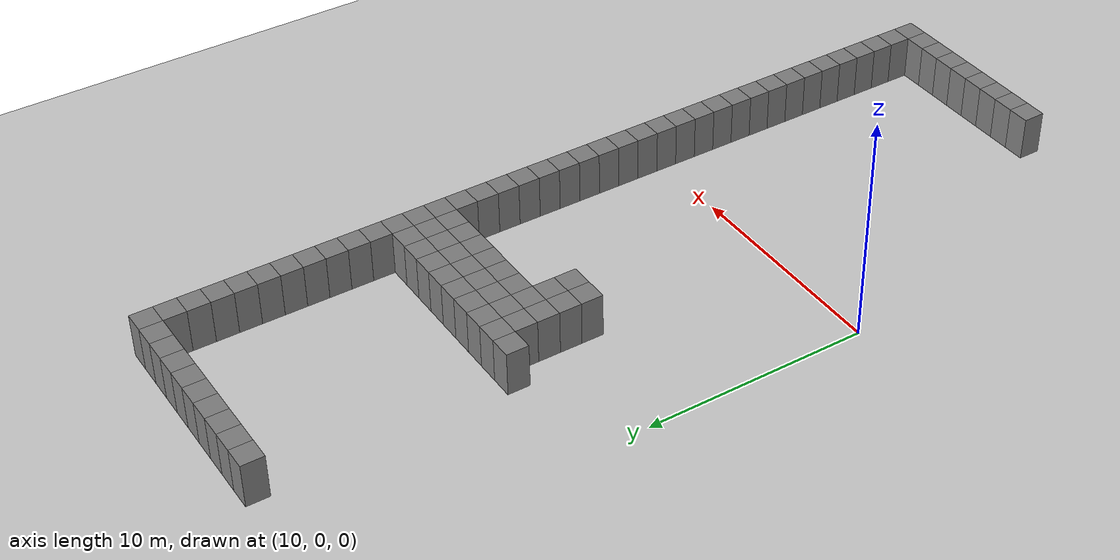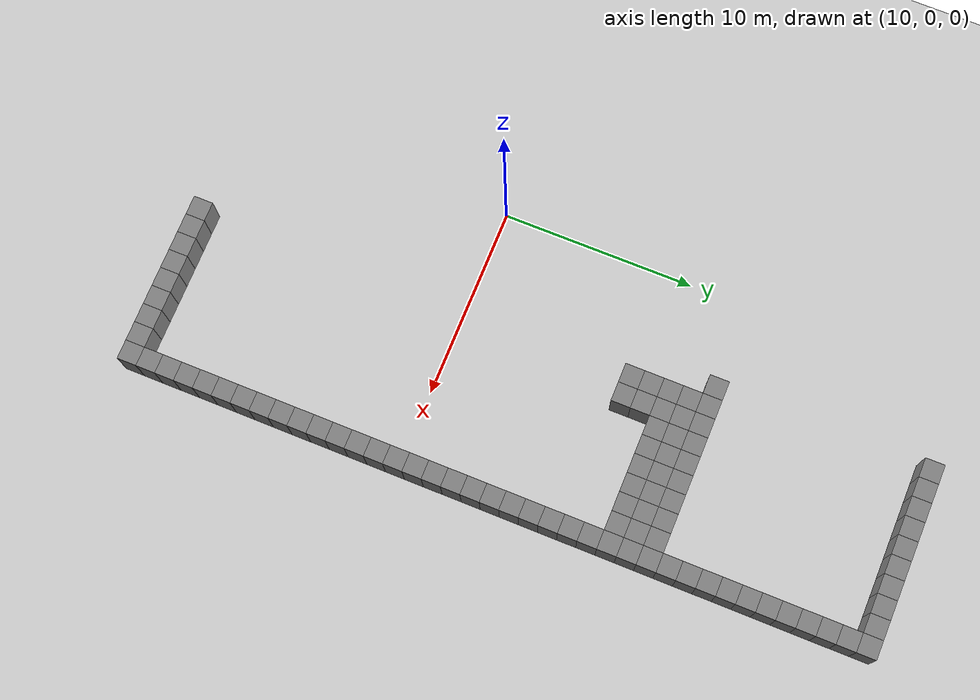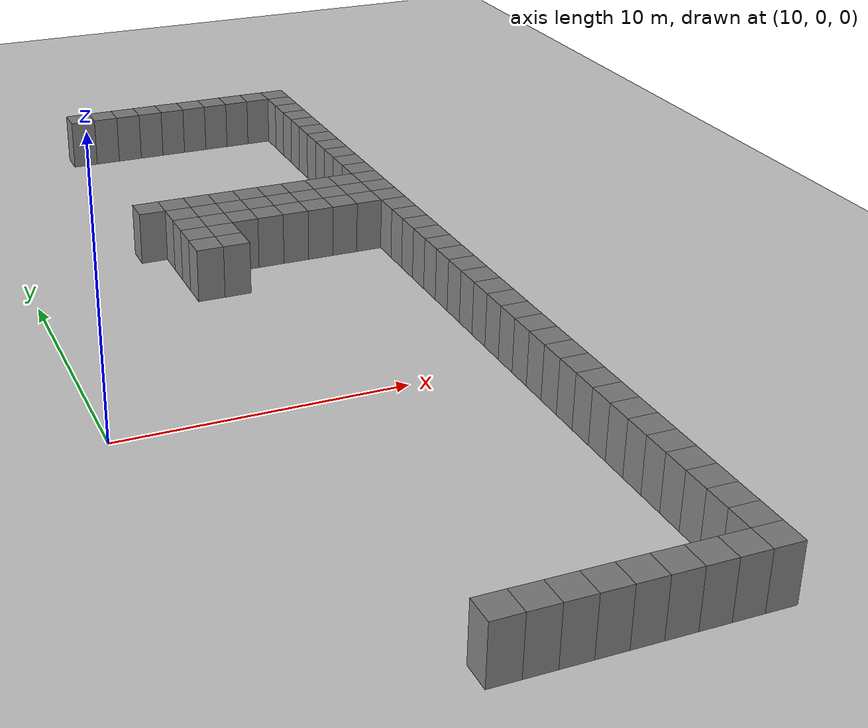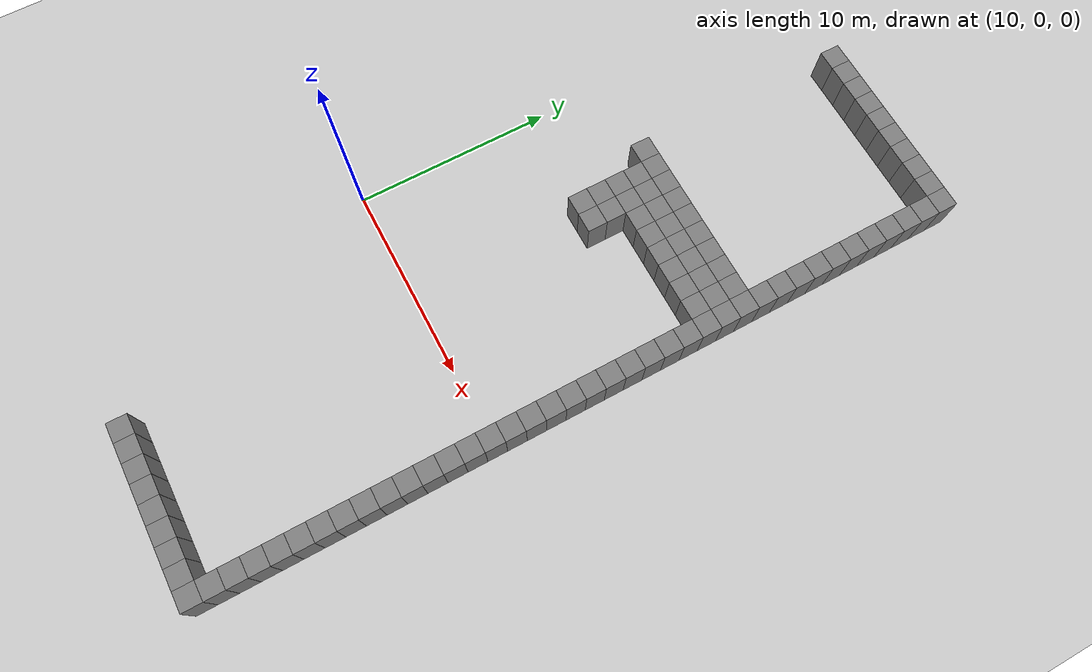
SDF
<sdf version="1.9">
 <world name="grid_world">
  <model name="ground_plane">
   <static>true</static>
   <link name="link">
    <collision name="collision">
     <geometry><plane><normal>0 0 1</normal><size>100 100</size></plane></geometry>
    </collision>
    <visual name="visual">
     <geometry><plane><normal>0 0 1</normal><size>100 100</size></plane></geometry>
     <material>
      <ambient>0.8 0.8 0.8 1</ambient>
      <diffuse>0.8 0.8 0.8 1</diffuse>
      <specular>0.8 0.8 0.8 1</specular>
     </material>
    </visual>
   </link>
  </model>
  <model name="wall_11_41">
   <static>true</static>
   <pose>16 -14 1 0 0 0</pose>
   <link name="link">
    <collision name="collision"><geometry><box><size>1 1 2</size></box></geometry></collision>
    <visual name="visual">
     <geometry><box><size>1 1 2</size></box></geometry>
     <material>
      <ambient>0.5 0.5 0.5 1</ambient>
      <diffuse>0.5 0.5 0.5 1</diffuse>
      <specular>0.5 0.5 0.5 1</specular>
     </material>
    </visual>
   </link>
  </model>
  <model name="wall_11_42">
   <static>true</static>
   <pose>17 -14 1 0 0 0</pose>
   <link name="link">
    <collision name="collision"><geometry><box><size>1 1 2</size></box></geometry></collision>
    <visual name="visual">
     <geometry><box><size>1 1 2</size></box></geometry>
     <material>
      <ambient>0.5 0.5 0.5 1</ambient>
      <diffuse>0.5 0.5 0.5 1</diffuse>
      <specular>0.5 0.5 0.5 1</specular>
     </material>
    </visual>
   </link>
  </model>
  <model name="wall_11_43">
   <static>true</static>
   <pose>18 -14 1 0 0 0</pose>
   <link name="link">
    <collision name="collision"><geometry><box><size>1 1 2</size></box></geometry></collision>
    <visual name="visual">
     <geometry><box><size>1 1 2</size></box></geometry>
     <material>
      <ambient>0.5 0.5 0.5 1</ambient>
      <diffuse>0.5 0.5 0.5 1</diffuse>
      <specular>0.5 0.5 0.5 1</specular>
     </material>
    </visual>
   </link>
  </model>
  <model name="wall_11_44">
   <static>true</static>
   <pose>19 -14 1 0 0 0</pose>
   <link name="link">
    <collision name="collision"><geometry><box><size>1 1 2</size></box></geometry></collision>
    <visual name="visual">
     <geometry><box><size>1 1 2</size></box></geometry>
     <material>
      <ambient>0.5 0.5 0.5 1</ambient>
      <diffuse>0.5 0.5 0.5 1</diffuse>
      <specular>0.5 0.5 0.5 1</specular>
     </material>
    </visual>
   </link>
  </model>
  <model name="wall_11_45">
   <static>true</static>
   <pose>20 -14 1 0 0 0</pose>
   <link name="link">
    <collision name="collision"><geometry><box><size>1 1 2</size></box></geometry></collision>
    <visual name="visual">
     <geometry><box><size>1 1 2</size></box></geometry>
     <material>
      <ambient>0.5 0.5 0.5 1</ambient>
      <diffuse>0.5 0.5 0.5 1</diffuse>
      <specular>0.5 0.5 0.5 1</specular>
     </material>
    </visual>
   </link>
  </model>
  <model name="wall_11_46">
   <static>true</static>
   <pose>21 -14 1 0 0 0</pose>
   <link name="link">
    <collision name="collision"><geometry><box><size>1 1 2</size></box></geometry></collision>
    <visual name="visual">
     <geometry><box><size>1 1 2</size></box></geometry>
     <material>
      <ambient>0.5 0.5 0.5 1</ambient>
      <diffuse>0.5 0.5 0.5 1</diffuse>
      <specular>0.5 0.5 0.5 1</specular>
     </material>
    </visual>
   </link>
  </model>
  <model name="wall_11_47">
   <static>true</static>
   <pose>22 -14 1 0 0 0</pose>
   <link name="link">
    <collision name="collision"><geometry><box><size>1 1 2</size></box></geometry></collision>
    <visual name="visual">
     <geometry><box><size>1 1 2</size></box></geometry>
     <material>
      <ambient>0.5 0.5 0.5 1</ambient>
      <diffuse>0.5 0.5 0.5 1</diffuse>
      <specular>0.5 0.5 0.5 1</specular>
     </material>
    </visual>
   </link>
  </model>
  <model name="wall_11_48">
   <static>true</static>
   <pose>23 -14 1 0 0 0</pose>
   <link name="link">
    <collision name="collision"><geometry><box><size>1 1 2</size></box></geometry></collision>
    <visual name="visual">
     <geometry><box><size>1 1 2</size></box></geometry>
     <material>
      <ambient>0.5 0.5 0.5 1</ambient>
      <diffuse>0.5 0.5 0.5 1</diffuse>
      <specular>0.5 0.5 0.5 1</specular>
     </material>
    </visual>
   </link>
  </model>
  <model name="wall_11_49">
   <static>true</static>
   <pose>24 -14 1 0 0 0</pose>
   <link name="link">
    <collision name="collision"><geometry><box><size>1 1 2</size></box></geometry></collision>
    <visual name="visual">
     <geometry><box><size>1 1 2</size></box></geometry>
     <material>
      <ambient>0.5 0.5 0.5 1</ambient>
      <diffuse>0.5 0.5 0.5 1</diffuse>
      <specular>0.5 0.5 0.5 1</specular>
     </material>
    </visual>
   </link>
  </model>
  <model name="wall_12_49">
   <static>true</static>
   <pose>24 -13 1 0 0 0</pose>
   <link name="link">
    <collision name="collision"><geometry><box><size>1 1 2</size></box></geometry></collision>
    <visual name="visual">
     <geometry><box><size>1 1 2</size></box></geometry>
     <material>
      <ambient>0.5 0.5 0.5 1</ambient>
      <diffuse>0.5 0.5 0.5 1</diffuse>
      <specular>0.5 0.5 0.5 1</specular>
     </material>
    </visual>
   </link>
  </model>
  <model name="wall_13_49">
   <static>true</static>
   <pose>24 -12 1 0 0 0</pose>
   <link name="link">
    <collision name="collision"><geometry><box><size>1 1 2</size></box></geometry></collision>
    <visual name="visual">
     <geometry><box><size>1 1 2</size></box></geometry>
     <material>
      <ambient>0.5 0.5 0.5 1</ambient>
      <diffuse>0.5 0.5 0.5 1</diffuse>
      <specular>0.5 0.5 0.5 1</specular>
     </material>
    </visual>
   </link>
  </model>
  <model name="wall_14_49">
   <static>true</static>
   <pose>24 -11 1 0 0 0</pose>
   <link name="link">
    <collision name="collision"><geometry><box><size>1 1 2</size></box></geometry></collision>
    <visual name="visual">
     <geometry><box><size>1 1 2</size></box></geometry>
     <material>
      <ambient>0.5 0.5 0.5 1</ambient>
      <diffuse>0.5 0.5 0.5 1</diffuse>
      <specular>0.5 0.5 0.5 1</specular>
     </material>
    </visual>
   </link>
  </model>
  <model name="wall_15_49">
   <static>true</static>
   <pose>24 -10 1 0 0 0</pose>
   <link name="link">
    <collision name="collision"><geometry><box><size>1 1 2</size></box></geometry></collision>
    <visual name="visual">
     <geometry><box><size>1 1 2</size></box></geometry>
     <material>
      <ambient>0.5 0.5 0.5 1</ambient>
      <diffuse>0.5 0.5 0.5 1</diffuse>
      <specular>0.5 0.5 0.5 1</specular>
     </material>
    </visual>
   </link>
  </model>
  <model name="wall_16_49">
   <static>true</static>
   <pose>24 -9 1 0 0 0</pose>
   <link name="link">
    <collision name="collision"><geometry><box><size>1 1 2</size></box></geometry></collision>
    <visual name="visual">
     <geometry><box><size>1 1 2</size></box></geometry>
     <material>
      <ambient>0.5 0.5 0.5 1</ambient>
      <diffuse>0.5 0.5 0.5 1</diffuse>
      <specular>0.5 0.5 0.5 1</specular>
     </material>
    </visual>
   </link>
  </model>
  <model name="wall_17_49">
   <static>true</static>
   <pose>24 -8 1 0 0 0</pose>
   <link name="link">
    <collision name="collision"><geometry><box><size>1 1 2</size></box></geometry></collision>
    <visual name="visual">
     <geometry><box><size>1 1 2</size></box></geometry>
     <material>
      <ambient>0.5 0.5 0.5 1</ambient>
      <diffuse>0.5 0.5 0.5 1</diffuse>
      <specular>0.5 0.5 0.5 1</specular>
     </material>
    </visual>
   </link>
  </model>
  <model name="wall_18_49">
   <static>true</static>
   <pose>24 -7 1 0 0 0</pose>
   <link name="link">
    <collision name="collision"><geometry><box><size>1 1 2</size></box></geometry></collision>
    <visual name="visual">
     <geometry><box><size>1 1 2</size></box></geometry>
     <material>
      <ambient>0.5 0.5 0.5 1</ambient>
      <diffuse>0.5 0.5 0.5 1</diffuse>
      <specular>0.5 0.5 0.5 1</specular>
     </material>
    </visual>
   </link>
  </model>
  <model name="wall_19_49">
   <static>true</static>
   <pose>24 -6 1 0 0 0</pose>
   <link name="link">
    <collision name="collision"><geometry><box><size>1 1 2</size></box></geometry></collision>
    <visual name="visual">
     <geometry><box><size>1 1 2</size></box></geometry>
     <material>
      <ambient>0.5 0.5 0.5 1</ambient>
      <diffuse>0.5 0.5 0.5 1</diffuse>
      <specular>0.5 0.5 0.5 1</specular>
     </material>
    </visual>
   </link>
  </model>
  <model name="wall_20_49">
   <static>true</static>
   <pose>24 -5 1 0 0 0</pose>
   <link name="link">
    <collision name="collision"><geometry><box><size>1 1 2</size></box></geometry></collision>
    <visual name="visual">
     <geometry><box><size>1 1 2</size></box></geometry>
     <material>
      <ambient>0.5 0.5 0.5 1</ambient>
      <diffuse>0.5 0.5 0.5 1</diffuse>
      <specular>0.5 0.5 0.5 1</specular>
     </material>
    </visual>
   </link>
  </model>
  <model name="wall_21_49">
   <static>true</static>
   <pose>24 -4 1 0 0 0</pose>
   <link name="link">
    <collision name="collision"><geometry><box><size>1 1 2</size></box></geometry></collision>
    <visual name="visual">
     <geometry><box><size>1 1 2</size></box></geometry>
     <material>
      <ambient>0.5 0.5 0.5 1</ambient>
      <diffuse>0.5 0.5 0.5 1</diffuse>
      <specular>0.5 0.5 0.5 1</specular>
     </material>
    </visual>
   </link>
  </model>
  <model name="wall_22_49">
   <static>true</static>
   <pose>24 -3 1 0 0 0</pose>
   <link name="link">
    <collision name="collision"><geometry><box><size>1 1 2</size></box></geometry></collision>
    <visual name="visual">
     <geometry><box><size>1 1 2</size></box></geometry>
     <material>
      <ambient>0.5 0.5 0.5 1</ambient>
      <diffuse>0.5 0.5 0.5 1</diffuse>
      <specular>0.5 0.5 0.5 1</specular>
     </material>
    </visual>
   </link>
  </model>
  <model name="wall_23_49">
   <static>true</static>
   <pose>24 -2 1 0 0 0</pose>
   <link name="link">
    <collision name="collision"><geometry><box><size>1 1 2</size></box></geometry></collision>
    <visual name="visual">
     <geometry><box><size>1 1 2</size></box></geometry>
     <material>
      <ambient>0.5 0.5 0.5 1</ambient>
      <diffuse>0.5 0.5 0.5 1</diffuse>
      <specular>0.5 0.5 0.5 1</specular>
     </material>
    </visual>
   </link>
  </model>
  <model name="wall_24_49">
   <static>true</static>
   <pose>24 -1 1 0 0 0</pose>
   <link name="link">
    <collision name="collision"><geometry><box><size>1 1 2</size></box></geometry></collision>
    <visual name="visual">
     <geometry><box><size>1 1 2</size></box></geometry>
     <material>
      <ambient>0.5 0.5 0.5 1</ambient>
      <diffuse>0.5 0.5 0.5 1</diffuse>
      <specular>0.5 0.5 0.5 1</specular>
     </material>
    </visual>
   </link>
  </model>
  <model name="wall_25_49">
   <static>true</static>
   <pose>24 0 1 0 0 0</pose>
   <link name="link">
    <collision name="collision"><geometry><box><size>1 1 2</size></box></geometry></collision>
    <visual name="visual">
     <geometry><box><size>1 1 2</size></box></geometry>
     <material>
      <ambient>0.5 0.5 0.5 1</ambient>
      <diffuse>0.5 0.5 0.5 1</diffuse>
      <specular>0.5 0.5 0.5 1</specular>
     </material>
    </visual>
   </link>
  </model>
  <model name="wall_26_49">
   <static>true</static>
   <pose>24 1 1 0 0 0</pose>
   <link name="link">
    <collision name="collision"><geometry><box><size>1 1 2</size></box></geometry></collision>
    <visual name="visual">
     <geometry><box><size>1 1 2</size></box></geometry>
     <material>
      <ambient>0.5 0.5 0.5 1</ambient>
      <diffuse>0.5 0.5 0.5 1</diffuse>
      <specular>0.5 0.5 0.5 1</specular>
     </material>
    </visual>
   </link>
  </model>
  <model name="wall_27_49">
   <static>true</static>
   <pose>24 2 1 0 0 0</pose>
   <link name="link">
    <collision name="collision"><geometry><box><size>1 1 2</size></box></geometry></collision>
    <visual name="visual">
     <geometry><box><size>1 1 2</size></box></geometry>
     <material>
      <ambient>0.5 0.5 0.5 1</ambient>
      <diffuse>0.5 0.5 0.5 1</diffuse>
      <specular>0.5 0.5 0.5 1</specular>
     </material>
    </visual>
   </link>
  </model>
  <model name="wall_28_49">
   <static>true</static>
   <pose>24 3 1 0 0 0</pose>
   <link name="link">
    <collision name="collision"><geometry><box><size>1 1 2</size></box></geometry></collision>
    <visual name="visual">
     <geometry><box><size>1 1 2</size></box></geometry>
     <material>
      <ambient>0.5 0.5 0.5 1</ambient>
      <diffuse>0.5 0.5 0.5 1</diffuse>
      <specular>0.5 0.5 0.5 1</specular>
     </material>
    </visual>
   </link>
  </model>
  <model name="wall_29_49">
   <static>true</static>
   <pose>24 4 1 0 0 0</pose>
   <link name="link">
    <collision name="collision"><geometry><box><size>1 1 2</size></box></geometry></collision>
    <visual name="visual">
     <geometry><box><size>1 1 2</size></box></geometry>
     <material>
      <ambient>0.5 0.5 0.5 1</ambient>
      <diffuse>0.5 0.5 0.5 1</diffuse>
      <specular>0.5 0.5 0.5 1</specular>
     </material>
    </visual>
   </link>
  </model>
  <model name="wall_30_49">
   <static>true</static>
   <pose>24 5 1 0 0 0</pose>
   <link name="link">
    <collision name="collision"><geometry><box><size>1 1 2</size></box></geometry></collision>
    <visual name="visual">
     <geometry><box><size>1 1 2</size></box></geometry>
     <material>
      <ambient>0.5 0.5 0.5 1</ambient>
      <diffuse>0.5 0.5 0.5 1</diffuse>
      <specular>0.5 0.5 0.5 1</specular>
     </material>
    </visual>
   </link>
  </model>
  <model name="wall_31_49">
   <static>true</static>
   <pose>24 6 1 0 0 0</pose>
   <link name="link">
    <collision name="collision"><geometry><box><size>1 1 2</size></box></geometry></collision>
    <visual name="visual">
     <geometry><box><size>1 1 2</size></box></geometry>
     <material>
      <ambient>0.5 0.5 0.5 1</ambient>
      <diffuse>0.5 0.5 0.5 1</diffuse>
      <specular>0.5 0.5 0.5 1</specular>
     </material>
    </visual>
   </link>
  </model>
  <model name="wall_32_49">
   <static>true</static>
   <pose>24 7 1 0 0 0</pose>
   <link name="link">
    <collision name="collision"><geometry><box><size>1 1 2</size></box></geometry></collision>
    <visual name="visual">
     <geometry><box><size>1 1 2</size></box></geometry>
     <material>
      <ambient>0.5 0.5 0.5 1</ambient>
      <diffuse>0.5 0.5 0.5 1</diffuse>
      <specular>0.5 0.5 0.5 1</specular>
     </material>
    </visual>
   </link>
  </model>
  <model name="wall_33_49">
   <static>true</static>
   <pose>24 8 1 0 0 0</pose>
   <link name="link">
    <collision name="collision"><geometry><box><size>1 1 2</size></box></geometry></collision>
    <visual name="visual">
     <geometry><box><size>1 1 2</size></box></geometry>
     <material>
      <ambient>0.5 0.5 0.5 1</ambient>
      <diffuse>0.5 0.5 0.5 1</diffuse>
      <specular>0.5 0.5 0.5 1</specular>
     </material>
    </visual>
   </link>
  </model>
  <model name="wall_34_41">
   <static>true</static>
   <pose>16 9 1 0 0 0</pose>
   <link name="link">
    <collision name="collision"><geometry><box><size>1 1 2</size></box></geometry></collision>
    <visual name="visual">
     <geometry><box><size>1 1 2</size></box></geometry>
     <material>
      <ambient>0.5 0.5 0.5 1</ambient>
      <diffuse>0.5 0.5 0.5 1</diffuse>
      <specular>0.5 0.5 0.5 1</specular>
     </material>
    </visual>
   </link>
  </model>
  <model name="wall_34_42">
   <static>true</static>
   <pose>17 9 1 0 0 0</pose>
   <link name="link">
    <collision name="collision"><geometry><box><size>1 1 2</size></box></geometry></collision>
    <visual name="visual">
     <geometry><box><size>1 1 2</size></box></geometry>
     <material>
      <ambient>0.5 0.5 0.5 1</ambient>
      <diffuse>0.5 0.5 0.5 1</diffuse>
      <specular>0.5 0.5 0.5 1</specular>
     </material>
    </visual>
   </link>
  </model>
  <model name="wall_34_49">
   <static>true</static>
   <pose>24 9 1 0 0 0</pose>
   <link name="link">
    <collision name="collision"><geometry><box><size>1 1 2</size></box></geometry></collision>
    <visual name="visual">
     <geometry><box><size>1 1 2</size></box></geometry>
     <material>
      <ambient>0.5 0.5 0.5 1</ambient>
      <diffuse>0.5 0.5 0.5 1</diffuse>
      <specular>0.5 0.5 0.5 1</specular>
     </material>
    </visual>
   </link>
  </model>
  <model name="wall_35_41">
   <static>true</static>
   <pose>16 10 1 0 0 0</pose>
   <link name="link">
    <collision name="collision"><geometry><box><size>1 1 2</size></box></geometry></collision>
    <visual name="visual">
     <geometry><box><size>1 1 2</size></box></geometry>
     <material>
      <ambient>0.5 0.5 0.5 1</ambient>
      <diffuse>0.5 0.5 0.5 1</diffuse>
      <specular>0.5 0.5 0.5 1</specular>
     </material>
    </visual>
   </link>
  </model>
  <model name="wall_35_42">
   <static>true</static>
   <pose>17 10 1 0 0 0</pose>
   <link name="link">
    <collision name="collision"><geometry><box><size>1 1 2</size></box></geometry></collision>
    <visual name="visual">
     <geometry><box><size>1 1 2</size></box></geometry>
     <material>
      <ambient>0.5 0.5 0.5 1</ambient>
      <diffuse>0.5 0.5 0.5 1</diffuse>
      <specular>0.5 0.5 0.5 1</specular>
     </material>
    </visual>
   </link>
  </model>
  <model name="wall_35_49">
   <static>true</static>
   <pose>24 10 1 0 0 0</pose>
   <link name="link">
    <collision name="collision"><geometry><box><size>1 1 2</size></box></geometry></collision>
    <visual name="visual">
     <geometry><box><size>1 1 2</size></box></geometry>
     <material>
      <ambient>0.5 0.5 0.5 1</ambient>
      <diffuse>0.5 0.5 0.5 1</diffuse>
      <specular>0.5 0.5 0.5 1</specular>
     </material>
    </visual>
   </link>
  </model>
  <model name="wall_36_41">
   <static>true</static>
   <pose>16 11 1 0 0 0</pose>
   <link name="link">
    <collision name="collision"><geometry><box><size>1 1 2</size></box></geometry></collision>
    <visual name="visual">
     <geometry><box><size>1 1 2</size></box></geometry>
     <material>
      <ambient>0.5 0.5 0.5 1</ambient>
      <diffuse>0.5 0.5 0.5 1</diffuse>
      <specular>0.5 0.5 0.5 1</specular>
     </material>
    </visual>
   </link>
  </model>
  <model name="wall_36_42">
   <static>true</static>
   <pose>17 11 1 0 0 0</pose>
   <link name="link">
    <collision name="collision"><geometry><box><size>1 1 2</size></box></geometry></collision>
    <visual name="visual">
     <geometry><box><size>1 1 2</size></box></geometry>
     <material>
      <ambient>0.5 0.5 0.5 1</ambient>
      <diffuse>0.5 0.5 0.5 1</diffuse>
      <specular>0.5 0.5 0.5 1</specular>
     </material>
    </visual>
   </link>
  </model>
  <model name="wall_36_43">
   <static>true</static>
   <pose>18 11 1 0 0 0</pose>
   <link name="link">
    <collision name="collision"><geometry><box><size>1 1 2</size></box></geometry></collision>
    <visual name="visual">
     <geometry><box><size>1 1 2</size></box></geometry>
     <material>
      <ambient>0.5 0.5 0.5 1</ambient>
      <diffuse>0.5 0.5 0.5 1</diffuse>
      <specular>0.5 0.5 0.5 1</specular>
     </material>
    </visual>
   </link>
  </model>
  <model name="wall_36_44">
   <static>true</static>
   <pose>19 11 1 0 0 0</pose>
   <link name="link">
    <collision name="collision"><geometry><box><size>1 1 2</size></box></geometry></collision>
    <visual name="visual">
     <geometry><box><size>1 1 2</size></box></geometry>
     <material>
      <ambient>0.5 0.5 0.5 1</ambient>
      <diffuse>0.5 0.5 0.5 1</diffuse>
      <specular>0.5 0.5 0.5 1</specular>
     </material>
    </visual>
   </link>
  </model>
  <model name="wall_36_45">
   <static>true</static>
   <pose>20 11 1 0 0 0</pose>
   <link name="link">
    <collision name="collision"><geometry><box><size>1 1 2</size></box></geometry></collision>
    <visual name="visual">
     <geometry><box><size>1 1 2</size></box></geometry>
     <material>
      <ambient>0.5 0.5 0.5 1</ambient>
      <diffuse>0.5 0.5 0.5 1</diffuse>
      <specular>0.5 0.5 0.5 1</specular>
     </material>
    </visual>
   </link>
  </model>
  <model name="wall_36_46">
   <static>true</static>
   <pose>21 11 1 0 0 0</pose>
   <link name="link">
    <collision name="collision"><geometry><box><size>1 1 2</size></box></geometry></collision>
    <visual name="visual">
     <geometry><box><size>1 1 2</size></box></geometry>
     <material>
      <ambient>0.5 0.5 0.5 1</ambient>
      <diffuse>0.5 0.5 0.5 1</diffuse>
      <specular>0.5 0.5 0.5 1</specular>
     </material>
    </visual>
   </link>
  </model>
  <model name="wall_36_47">
   <static>true</static>
   <pose>22 11 1 0 0 0</pose>
   <link name="link">
    <collision name="collision"><geometry><box><size>1 1 2</size></box></geometry></collision>
    <visual name="visual">
     <geometry><box><size>1 1 2</size></box></geometry>
     <material>
      <ambient>0.5 0.5 0.5 1</ambient>
      <diffuse>0.5 0.5 0.5 1</diffuse>
      <specular>0.5 0.5 0.5 1</specular>
     </material>
    </visual>
   </link>
  </model>
  <model name="wall_36_48">
   <static>true</static>
   <pose>23 11 1 0 0 0</pose>
   <link name="link">
    <collision name="collision"><geometry><box><size>1 1 2</size></box></geometry></collision>
    <visual name="visual">
     <geometry><box><size>1 1 2</size></box></geometry>
     <material>
      <ambient>0.5 0.5 0.5 1</ambient>
      <diffuse>0.5 0.5 0.5 1</diffuse>
      <specular>0.5 0.5 0.5 1</specular>
     </material>
    </visual>
   </link>
  </model>
  <model name="wall_36_49">
   <static>true</static>
   <pose>24 11 1 0 0 0</pose>
   <link name="link">
    <collision name="collision"><geometry><box><size>1 1 2</size></box></geometry></collision>
    <visual name="visual">
     <geometry><box><size>1 1 2</size></box></geometry>
     <material>
      <ambient>0.5 0.5 0.5 1</ambient>
      <diffuse>0.5 0.5 0.5 1</diffuse>
      <specular>0.5 0.5 0.5 1</specular>
     </material>
    </visual>
   </link>
  </model>
  <model name="wall_37_41">
   <static>true</static>
   <pose>16 12 1 0 0 0</pose>
   <link name="link">
    <collision name="collision"><geometry><box><size>1 1 2</size></box></geometry></collision>
    <visual name="visual">
     <geometry><box><size>1 1 2</size></box></geometry>
     <material>
      <ambient>0.5 0.5 0.5 1</ambient>
      <diffuse>0.5 0.5 0.5 1</diffuse>
      <specular>0.5 0.5 0.5 1</specular>
     </material>
    </visual>
   </link>
  </model>
  <model name="wall_37_42">
   <static>true</static>
   <pose>17 12 1 0 0 0</pose>
   <link name="link">
    <collision name="collision"><geometry><box><size>1 1 2</size></box></geometry></collision>
    <visual name="visual">
     <geometry><box><size>1 1 2</size></box></geometry>
     <material>
      <ambient>0.5 0.5 0.5 1</ambient>
      <diffuse>0.5 0.5 0.5 1</diffuse>
      <specular>0.5 0.5 0.5 1</specular>
     </material>
    </visual>
   </link>
  </model>
  <model name="wall_37_43">
   <static>true</static>
   <pose>18 12 1 0 0 0</pose>
   <link name="link">
    <collision name="collision"><geometry><box><size>1 1 2</size></box></geometry></collision>
    <visual name="visual">
     <geometry><box><size>1 1 2</size></box></geometry>
     <material>
      <ambient>0.5 0.5 0.5 1</ambient>
      <diffuse>0.5 0.5 0.5 1</diffuse>
      <specular>0.5 0.5 0.5 1</specular>
     </material>
    </visual>
   </link>
  </model>
  <model name="wall_37_44">
   <static>true</static>
   <pose>19 12 1 0 0 0</pose>
   <link name="link">
    <collision name="collision"><geometry><box><size>1 1 2</size></box></geometry></collision>
    <visual name="visual">
     <geometry><box><size>1 1 2</size></box></geometry>
     <material>
      <ambient>0.5 0.5 0.5 1</ambient>
      <diffuse>0.5 0.5 0.5 1</diffuse>
      <specular>0.5 0.5 0.5 1</specular>
     </material>
    </visual>
   </link>
  </model>
  <model name="wall_37_45">
   <static>true</static>
   <pose>20 12 1 0 0 0</pose>
   <link name="link">
    <collision name="collision"><geometry><box><size>1 1 2</size></box></geometry></collision>
    <visual name="visual">
     <geometry><box><size>1 1 2</size></box></geometry>
     <material>
      <ambient>0.5 0.5 0.5 1</ambient>
      <diffuse>0.5 0.5 0.5 1</diffuse>
      <specular>0.5 0.5 0.5 1</specular>
     </material>
    </visual>
   </link>
  </model>
  <model name="wall_37_46">
   <static>true</static>
   <pose>21 12 1 0 0 0</pose>
   <link name="link">
    <collision name="collision"><geometry><box><size>1 1 2</size></box></geometry></collision>
    <visual name="visual">
     <geometry><box><size>1 1 2</size></box></geometry>
     <material>
      <ambient>0.5 0.5 0.5 1</ambient>
      <diffuse>0.5 0.5 0.5 1</diffuse>
      <specular>0.5 0.5 0.5 1</specular>
     </material>
    </visual>
   </link>
  </model>
  <model name="wall_37_47">
   <static>true</static>
   <pose>22 12 1 0 0 0</pose>
   <link name="link">
    <collision name="collision"><geometry><box><size>1 1 2</size></box></geometry></collision>
    <visual name="visual">
     <geometry><box><size>1 1 2</size></box></geometry>
     <material>
      <ambient>0.5 0.5 0.5 1</ambient>
      <diffuse>0.5 0.5 0.5 1</diffuse>
      <specular>0.5 0.5 0.5 1</specular>
     </material>
    </visual>
   </link>
  </model>
  <model name="wall_37_48">
   <static>true</static>
   <pose>23 12 1 0 0 0</pose>
   <link name="link">
    <collision name="collision"><geometry><box><size>1 1 2</size></box></geometry></collision>
    <visual name="visual">
     <geometry><box><size>1 1 2</size></box></geometry>
     <material>
      <ambient>0.5 0.5 0.5 1</ambient>
      <diffuse>0.5 0.5 0.5 1</diffuse>
      <specular>0.5 0.5 0.5 1</specular>
     </material>
    </visual>
   </link>
  </model>
  <model name="wall_37_49">
   <static>true</static>
   <pose>24 12 1 0 0 0</pose>
   <link name="link">
    <collision name="collision"><geometry><box><size>1 1 2</size></box></geometry></collision>
    <visual name="visual">
     <geometry><box><size>1 1 2</size></box></geometry>
     <material>
      <ambient>0.5 0.5 0.5 1</ambient>
      <diffuse>0.5 0.5 0.5 1</diffuse>
      <specular>0.5 0.5 0.5 1</specular>
     </material>
    </visual>
   </link>
  </model>
  <model name="wall_38_40">
   <static>true</static>
   <pose>15 13 1 0 0 0</pose>
   <link name="link">
    <collision name="collision"><geometry><box><size>1 1 2</size></box></geometry></collision>
    <visual name="visual">
     <geometry><box><size>1 1 2</size></box></geometry>
     <material>
      <ambient>0.5 0.5 0.5 1</ambient>
      <diffuse>0.5 0.5 0.5 1</diffuse>
      <specular>0.5 0.5 0.5 1</specular>
     </material>
    </visual>
   </link>
  </model>
  <model name="wall_38_41">
   <static>true</static>
   <pose>16 13 1 0 0 0</pose>
   <link name="link">
    <collision name="collision"><geometry><box><size>1 1 2</size></box></geometry></collision>
    <visual name="visual">
     <geometry><box><size>1 1 2</size></box></geometry>
     <material>
      <ambient>0.5 0.5 0.5 1</ambient>
      <diffuse>0.5 0.5 0.5 1</diffuse>
      <specular>0.5 0.5 0.5 1</specular>
     </material>
    </visual>
   </link>
  </model>
  <model name="wall_38_42">
   <static>true</static>
   <pose>17 13 1 0 0 0</pose>
   <link name="link">
    <collision name="collision"><geometry><box><size>1 1 2</size></box></geometry></collision>
    <visual name="visual">
     <geometry><box><size>1 1 2</size></box></geometry>
     <material>
      <ambient>0.5 0.5 0.5 1</ambient>
      <diffuse>0.5 0.5 0.5 1</diffuse>
      <specular>0.5 0.5 0.5 1</specular>
     </material>
    </visual>
   </link>
  </model>
  <model name="wall_38_43">
   <static>true</static>
   <pose>18 13 1 0 0 0</pose>
   <link name="link">
    <collision name="collision"><geometry><box><size>1 1 2</size></box></geometry></collision>
    <visual name="visual">
     <geometry><box><size>1 1 2</size></box></geometry>
     <material>
      <ambient>0.5 0.5 0.5 1</ambient>
      <diffuse>0.5 0.5 0.5 1</diffuse>
      <specular>0.5 0.5 0.5 1</specular>
     </material>
    </visual>
   </link>
  </model>
  <model name="wall_38_44">
   <static>true</static>
   <pose>19 13 1 0 0 0</pose>
   <link name="link">
    <collision name="collision"><geometry><box><size>1 1 2</size></box></geometry></collision>
    <visual name="visual">
     <geometry><box><size>1 1 2</size></box></geometry>
     <material>
      <ambient>0.5 0.5 0.5 1</ambient>
      <diffuse>0.5 0.5 0.5 1</diffuse>
      <specular>0.5 0.5 0.5 1</specular>
     </material>
    </visual>
   </link>
  </model>
  <model name="wall_38_45">
   <static>true</static>
   <pose>20 13 1 0 0 0</pose>
   <link name="link">
    <collision name="collision"><geometry><box><size>1 1 2</size></box></geometry></collision>
    <visual name="visual">
     <geometry><box><size>1 1 2</size></box></geometry>
     <material>
      <ambient>0.5 0.5 0.5 1</ambient>
      <diffuse>0.5 0.5 0.5 1</diffuse>
      <specular>0.5 0.5 0.5 1</specular>
     </material>
    </visual>
   </link>
  </model>
  <model name="wall_38_46">
   <static>true</static>
   <pose>21 13 1 0 0 0</pose>
   <link name="link">
    <collision name="collision"><geometry><box><size>1 1 2</size></box></geometry></collision>
    <visual name="visual">
     <geometry><box><size>1 1 2</size></box></geometry>
     <material>
      <ambient>0.5 0.5 0.5 1</ambient>
      <diffuse>0.5 0.5 0.5 1</diffuse>
      <specular>0.5 0.5 0.5 1</specular>
     </material>
    </visual>
   </link>
  </model>
  <model name="wall_38_47">
   <static>true</static>
   <pose>22 13 1 0 0 0</pose>
   <link name="link">
    <collision name="collision"><geometry><box><size>1 1 2</size></box></geometry></collision>
    <visual name="visual">
     <geometry><box><size>1 1 2</size></box></geometry>
     <material>
      <ambient>0.5 0.5 0.5 1</ambient>
      <diffuse>0.5 0.5 0.5 1</diffuse>
      <specular>0.5 0.5 0.5 1</specular>
     </material>
    </visual>
   </link>
  </model>
  <model name="wall_38_48">
   <static>true</static>
   <pose>23 13 1 0 0 0</pose>
   <link name="link">
    <collision name="collision"><geometry><box><size>1 1 2</size></box></geometry></collision>
    <visual name="visual">
     <geometry><box><size>1 1 2</size></box></geometry>
     <material>
      <ambient>0.5 0.5 0.5 1</ambient>
      <diffuse>0.5 0.5 0.5 1</diffuse>
      <specular>0.5 0.5 0.5 1</specular>
     </material>
    </visual>
   </link>
  </model>
  <model name="wall_38_49">
   <static>true</static>
   <pose>24 13 1 0 0 0</pose>
   <link name="link">
    <collision name="collision"><geometry><box><size>1 1 2</size></box></geometry></collision>
    <visual name="visual">
     <geometry><box><size>1 1 2</size></box></geometry>
     <material>
      <ambient>0.5 0.5 0.5 1</ambient>
      <diffuse>0.5 0.5 0.5 1</diffuse>
      <specular>0.5 0.5 0.5 1</specular>
     </material>
    </visual>
   </link>
  </model>
  <model name="wall_39_49">
   <static>true</static>
   <pose>24 14 1 0 0 0</pose>
   <link name="link">
    <collision name="collision"><geometry><box><size>1 1 2</size></box></geometry></collision>
    <visual name="visual">
     <geometry><box><size>1 1 2</size></box></geometry>
     <material>
      <ambient>0.5 0.5 0.5 1</ambient>
      <diffuse>0.5 0.5 0.5 1</diffuse>
      <specular>0.5 0.5 0.5 1</specular>
     </material>
    </visual>
   </link>
  </model>
  <model name="wall_40_49">
   <static>true</static>
   <pose>24 15 1 0 0 0</pose>
   <link name="link">
    <collision name="collision"><geometry><box><size>1 1 2</size></box></geometry></collision>
    <visual name="visual">
     <geometry><box><size>1 1 2</size></box></geometry>
     <material>
      <ambient>0.5 0.5 0.5 1</ambient>
      <diffuse>0.5 0.5 0.5 1</diffuse>
      <specular>0.5 0.5 0.5 1</specular>
     </material>
    </visual>
   </link>
  </model>
  <model name="wall_41_49">
   <static>true</static>
   <pose>24 16 1 0 0 0</pose>
   <link name="link">
    <collision name="collision"><geometry><box><size>1 1 2</size></box></geometry></collision>
    <visual name="visual">
     <geometry><box><size>1 1 2</size></box></geometry>
     <material>
      <ambient>0.5 0.5 0.5 1</ambient>
      <diffuse>0.5 0.5 0.5 1</diffuse>
      <specular>0.5 0.5 0.5 1</specular>
     </material>
    </visual>
   </link>
  </model>
  <model name="wall_42_49">
   <static>true</static>
   <pose>24 17 1 0 0 0</pose>
   <link name="link">
    <collision name="collision"><geometry><box><size>1 1 2</size></box></geometry></collision>
    <visual name="visual">
     <geometry><box><size>1 1 2</size></box></geometry>
     <material>
      <ambient>0.5 0.5 0.5 1</ambient>
      <diffuse>0.5 0.5 0.5 1</diffuse>
      <specular>0.5 0.5 0.5 1</specular>
     </material>
    </visual>
   </link>
  </model>
  <model name="wall_43_49">
   <static>true</static>
   <pose>24 18 1 0 0 0</pose>
   <link name="link">
    <collision name="collision"><geometry><box><size>1 1 2</size></box></geometry></collision>
    <visual name="visual">
     <geometry><box><size>1 1 2</size></box></geometry>
     <material>
      <ambient>0.5 0.5 0.5 1</ambient>
      <diffuse>0.5 0.5 0.5 1</diffuse>
      <specular>0.5 0.5 0.5 1</specular>
     </material>
    </visual>
   </link>
  </model>
  <model name="wall_44_49">
   <static>true</static>
   <pose>24 19 1 0 0 0</pose>
   <link name="link">
    <collision name="collision"><geometry><box><size>1 1 2</size></box></geometry></collision>
    <visual name="visual">
     <geometry><box><size>1 1 2</size></box></geometry>
     <material>
      <ambient>0.5 0.5 0.5 1</ambient>
      <diffuse>0.5 0.5 0.5 1</diffuse>
      <specular>0.5 0.5 0.5 1</specular>
     </material>
    </visual>
   </link>
  </model>
  <model name="wall_45_49">
   <static>true</static>
   <pose>24 20 1 0 0 0</pose>
   <link name="link">
    <collision name="collision"><geometry><box><size>1 1 2</size></box></geometry></collision>
    <visual name="visual">
     <geometry><box><size>1 1 2</size></box></geometry>
     <material>
      <ambient>0.5 0.5 0.5 1</ambient>
      <diffuse>0.5 0.5 0.5 1</diffuse>
      <specular>0.5 0.5 0.5 1</specular>
     </material>
    </visual>
   </link>
  </model>
  <model name="wall_46_49">
   <static>true</static>
   <pose>24 21 1 0 0 0</pose>
   <link name="link">
    <collision name="collision"><geometry><box><size>1 1 2</size></box></geometry></collision>
    <visual name="visual">
     <geometry><box><size>1 1 2</size></box></geometry>
     <material>
      <ambient>0.5 0.5 0.5 1</ambient>
      <diffuse>0.5 0.5 0.5 1</diffuse>
      <specular>0.5 0.5 0.5 1</specular>
     </material>
    </visual>
   </link>
  </model>
  <model name="wall_47_49">
   <static>true</static>
   <pose>24 22 1 0 0 0</pose>
   <link name="link">
    <collision name="collision"><geometry><box><size>1 1 2</size></box></geometry></collision>
    <visual name="visual">
     <geometry><box><size>1 1 2</size></box></geometry>
     <material>
      <ambient>0.5 0.5 0.5 1</ambient>
      <diffuse>0.5 0.5 0.5 1</diffuse>
      <specular>0.5 0.5 0.5 1</specular>
     </material>
    </visual>
   </link>
  </model>
  <model name="wall_48_49">
   <static>true</static>
   <pose>24 23 1 0 0 0</pose>
   <link name="link">
    <collision name="collision"><geometry><box><size>1 1 2</size></box></geometry></collision>
    <visual name="visual">
     <geometry><box><size>1 1 2</size></box></geometry>
     <material>
      <ambient>0.5 0.5 0.5 1</ambient>
      <diffuse>0.5 0.5 0.5 1</diffuse>
      <specular>0.5 0.5 0.5 1</specular>
     </material>
    </visual>
   </link>
  </model>
  <model name="wall_49_40">
   <static>true</static>
   <pose>15 24 1 0 0 0</pose>
   <link name="link">
    <collision name="collision"><geometry><box><size>1 1 2</size></box></geometry></collision>
    <visual name="visual">
     <geometry><box><size>1 1 2</size></box></geometry>
     <material>
      <ambient>0.5 0.5 0.5 1</ambient>
      <diffuse>0.5 0.5 0.5 1</diffuse>
      <specular>0.5 0.5 0.5 1</specular>
     </material>
    </visual>
   </link>
  </model>
  <model name="wall_49_41">
   <static>true</static>
   <pose>16 24 1 0 0 0</pose>
   <link name="link">
    <collision name="collision"><geometry><box><size>1 1 2</size></box></geometry></collision>
    <visual name="visual">
     <geometry><box><size>1 1 2</size></box></geometry>
     <material>
      <ambient>0.5 0.5 0.5 1</ambient>
      <diffuse>0.5 0.5 0.5 1</diffuse>
      <specular>0.5 0.5 0.5 1</specular>
     </material>
    </visual>
   </link>
  </model>
  <model name="wall_49_42">
   <static>true</static>
   <pose>17 24 1 0 0 0</pose>
   <link name="link">
    <collision name="collision"><geometry><box><size>1 1 2</size></box></geometry></collision>
    <visual name="visual">
     <geometry><box><size>1 1 2</size></box></geometry>
     <material>
      <ambient>0.5 0.5 0.5 1</ambient>
      <diffuse>0.5 0.5 0.5 1</diffuse>
      <specular>0.5 0.5 0.5 1</specular>
     </material>
    </visual>
   </link>
  </model>
  <model name="wall_49_43">
   <static>true</static>
   <pose>18 24 1 0 0 0</pose>
   <link name="link">
    <collision name="collision"><geometry><box><size>1 1 2</size></box></geometry></collision>
    <visual name="visual">
     <geometry><box><size>1 1 2</size></box></geometry>
     <material>
      <ambient>0.5 0.5 0.5 1</ambient>
      <diffuse>0.5 0.5 0.5 1</diffuse>
      <specular>0.5 0.5 0.5 1</specular>
     </material>
    </visual>
   </link>
  </model>
  <model name="wall_49_44">
   <static>true</static>
   <pose>19 24 1 0 0 0</pose>
   <link name="link">
    <collision name="collision"><geometry><box><size>1 1 2</size></box></geometry></collision>
    <visual name="visual">
     <geometry><box><size>1 1 2</size></box></geometry>
     <material>
      <ambient>0.5 0.5 0.5 1</ambient>
      <diffuse>0.5 0.5 0.5 1</diffuse>
      <specular>0.5 0.5 0.5 1</specular>
     </material>
    </visual>
   </link>
  </model>
  <model name="wall_49_45">
   <static>true</static>
   <pose>20 24 1 0 0 0</pose>
   <link name="link">
    <collision name="collision"><geometry><box><size>1 1 2</size></box></geometry></collision>
    <visual name="visual">
     <geometry><box><size>1 1 2</size></box></geometry>
     <material>
      <ambient>0.5 0.5 0.5 1</ambient>
      <diffuse>0.5 0.5 0.5 1</diffuse>
      <specular>0.5 0.5 0.5 1</specular>
     </material>
    </visual>
   </link>
  </model>
  <model name="wall_49_46">
   <static>true</static>
   <pose>21 24 1 0 0 0</pose>
   <link name="link">
    <collision name="collision"><geometry><box><size>1 1 2</size></box></geometry></collision>
    <visual name="visual">
     <geometry><box><size>1 1 2</size></box></geometry>
     <material>
      <ambient>0.5 0.5 0.5 1</ambient>
      <diffuse>0.5 0.5 0.5 1</diffuse>
      <specular>0.5 0.5 0.5 1</specular>
     </material>
    </visual>
   </link>
  </model>
  <model name="wall_49_47">
   <static>true</static>
   <pose>22 24 1 0 0 0</pose>
   <link name="link">
    <collision name="collision"><geometry><box><size>1 1 2</size></box></geometry></collision>
    <visual name="visual">
     <geometry><box><size>1 1 2</size></box></geometry>
     <material>
      <ambient>0.5 0.5 0.5 1</ambient>
      <diffuse>0.5 0.5 0.5 1</diffuse>
      <specular>0.5 0.5 0.5 1</specular>
     </material>
    </visual>
   </link>
  </model>
  <model name="wall_49_48">
   <static>true</static>
   <pose>23 24 1 0 0 0</pose>
   <link name="link">
    <collision name="collision"><geometry><box><size>1 1 2</size></box></geometry></collision>
    <visual name="visual">
     <geometry><box><size>1 1 2</size></box></geometry>
     <material>
      <ambient>0.5 0.5 0.5 1</ambient>
      <diffuse>0.5 0.5 0.5 1</diffuse>
      <specular>0.5 0.5 0.5 1</specular>
     </material>
    </visual>
   </link>
  </model>
  <model name="wall_49_49">
   <static>true</static>
   <pose>24 24 1 0 0 0</pose>
   <link name="link">
    <collision name="collision"><geometry><box><size>1 1 2</size></box></geometry></collision>
    <visual name="visual">
     <geometry><box><size>1 1 2</size></box></geometry>
     <material>
      <ambient>0.5 0.5 0.5 1</ambient>
      <diffuse>0.5 0.5 0.5 1</diffuse>
      <specular>0.5 0.5 0.5 1</specular>
     </material>
    </visual>
   </link>
  </model>
 </world>
</sdf>
